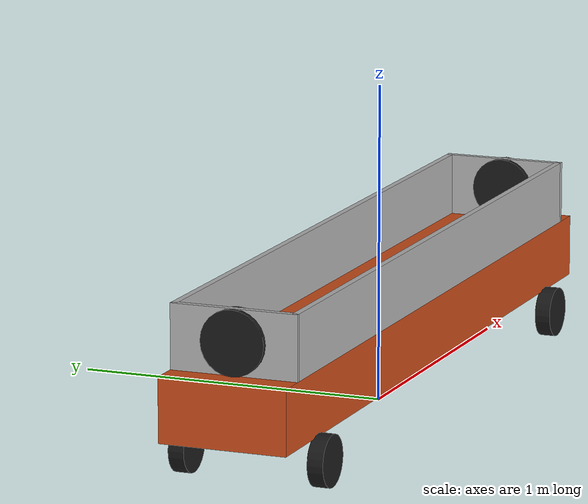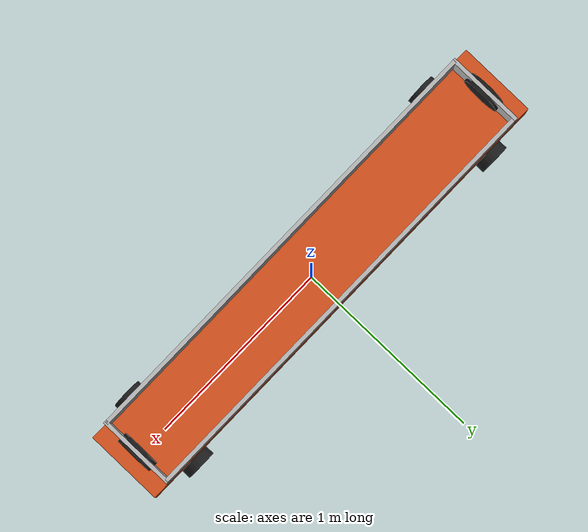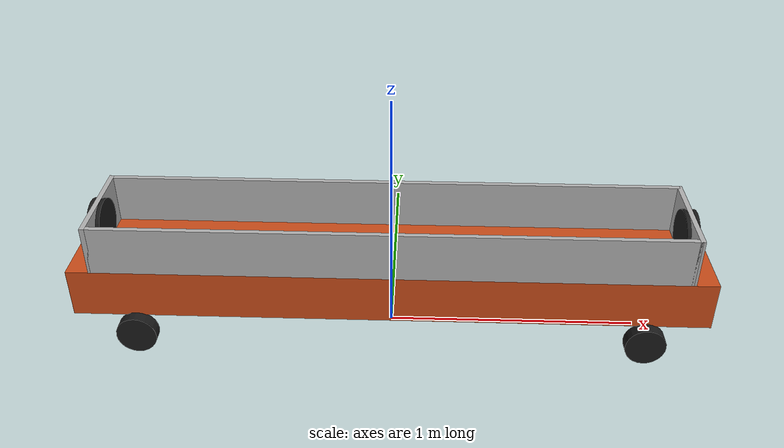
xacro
<?xml version="1.0"?>
<robot xmlns:xacro="http://www.ros.org/wiki/xacro" name="truck_bin">

    <!-- 1. القاعدة الأساسية للشاحنة -->
    <link name="truck_base_link">
        <visual>
            <origin xyz="0 0 0.25" rpy="0 0 0"/>
            <geometry>
                <box size="2.5 0.4 0.2"/>
            </geometry>
            <material name="truck_color">
                <color rgba="0.8 0.3 0.1 1.0"/>
            </material>
        </visual>
        <collision>
            <origin xyz="0 0 0.25" rpy="0 0 0"/>
            <geometry>
                <box size="2.5 0.4 0.2"/>
            </geometry>
        </collision>
        <inertial>
            <mass value="20.0"/>
            <origin xyz="0 0 0.25" rpy="0 0 0"/>
            <inertia ixx="0.5" ixy="0.0" ixz="0.0" iyy="0.5" iyz="0.0" izz="0.5"/>
        </inertial>
    </link>

    <!-- تعريف العجلات الأربع -->
    <xacro:macro name="wheel" params="prefix x_pos y_pos">
        <link name="${prefix}_wheel_link">
            <visual>
                <origin xyz="0 0 0" rpy="1.5707 0 0"/>
                <geometry>
                    <cylinder radius="0.08" length="0.05"/>
                </geometry>
                <material name="black">
                    <color rgba="0.1 0.1 0.1 1.0"/>
                </material>
            </visual>
            <collision>
                <origin xyz="0 0 0" rpy="1.5707 0 0"/>
                <geometry>
                    <cylinder radius="0.08" length="0.05"/>
                </geometry>
            </collision>
            <inertial>
                <mass value="1.0"/>
                <origin xyz="0 0 0" rpy="1.5707 0 0"/>
                <inertia ixx="0.01" ixy="0.0" ixz="0.0" iyy="0.01" iyz="0.0" izz="0.01"/>
            </inertial>
        </link>

        <joint name="${prefix}_wheel_joint" type="fixed">
            <parent link="truck_base_link"/>
            <child link="${prefix}_wheel_link"/>
            <origin xyz="${x_pos} ${y_pos} 0.08" rpy="0 0 0"/>
        </joint>

        <gazebo reference="${prefix}_wheel_link">
            <material>Gazebo/Black</material>
        </gazebo>
    </xacro:macro>

    <!-- استدعاء العجلات الأربع -->
    <xacro:wheel prefix="front_right" x_pos="1.0"  y_pos="-0.22"/>
    <xacro:wheel prefix="front_left"  x_pos="1.0"  y_pos="0.22"/>
    <xacro:wheel prefix="back_right"  x_pos="-1.0" y_pos="-0.22"/>
    <xacro:wheel prefix="back_left"   x_pos="-1.0" y_pos="0.22"/>

    <!-- 2. حواف صندوق الشاحنة (بارتفاع 20 سم / 0.2 متر) -->
    <!-- الجدار الجانبي الأيمن -->
    <link name="right_wall_link">
        <visual><origin xyz="0 0 0.1" rpy="0 0 0"/><geometry><box size="2.3 0.02 0.2"/></geometry><material name="wall_color"><color rgba="0.7 0.7 0.7 1.0"/></material></visual>
        <collision><origin xyz="0 0 0.1" rpy="0 0 0"/><geometry><box size="2.3 0.02 0.2"/></geometry></collision>
        <inertial><mass value="2.0"/><inertia ixx="0.1" ixy="0" ixz="0" iyy="0.1" iyz="0" izz="0.1"/></inertial>
    </link>
    <joint name="right_wall_joint" type="fixed">
        <parent link="truck_base_link"/><child link="right_wall_link"/><origin xyz="0.0 -0.19 0.35" rpy="0 0 0"/>
    </joint>

    <!-- الجدار الجانبي الأيسر -->
    <link name="left_wall_link">
        <visual><origin xyz="0 0 0.1" rpy="0 0 0"/><geometry><box size="2.3 0.02 0.2"/></geometry><material name="wall_color"><color rgba="0.7 0.7 0.7 1.0"/></material></visual>
        <collision><origin xyz="0 0 0.1" rpy="0 0 0"/><geometry><box size="2.3 0.02 0.2"/></geometry></collision>
        <inertial><mass value="2.0"/><inertia ixx="0.1" ixy="0" ixz="0" iyy="0.1" iyz="0" izz="0.1"/></inertial>
    </link>
    <joint name="left_wall_joint" type="fixed">
        <parent link="truck_base_link"/><child link="left_wall_link"/><origin xyz="0.0 0.19 0.35" rpy="0 0 0"/>
    </joint>

    <!-- الجدار الخلفي -->
    <link name="back_wall_link">
        <visual><origin xyz="0 0 0.1" rpy="0 0 0"/><geometry><box size="0.02 0.4 0.2"/></geometry><material name="wall_color"><color rgba="0.7 0.7 0.7 1.0"/></material></visual>
        <collision><origin xyz="0 0 0.1" rpy="0 0 0"/><geometry><box size="0.02 0.4 0.2"/></geometry></collision>
        <inertial><mass value="1.0"/><inertia ixx="0.05" ixy="0" ixz="0" iyy="0.05" iyz="0" izz="0.05"/></inertial>
    </link>
    <joint name="back_wall_joint" type="fixed">
        <parent link="truck_base_link"/><child link="back_wall_link"/><origin xyz="-1.15 0 0.35" rpy="0 0 0"/>
    </joint>

    <!-- الجدار الأمامي -->
    <link name="front_wall_link">
        <visual><origin xyz="0 0 0.1" rpy="0 0 0"/><geometry><box size="0.02 0.4 0.2"/></geometry><material name="wall_color"><color rgba="0.7 0.7 0.7 1.0"/></material></visual>
        <collision><origin xyz="0 0 0.1" rpy="0 0 0"/><geometry><box size="0.02 0.4 0.2"/></geometry></collision>
        <inertial><mass value="1.0"/><inertia ixx="0.05" ixy="0" ixz="0" iyy="0.05" iyz="0" izz="0.05"/></inertial>
    </link>
    <joint name="front_wall_joint" type="fixed">
        <parent link="truck_base_link"/><child link="front_wall_link"/><origin xyz="1.15 0 0.35" rpy="0 0 0"/>
    </joint>

    <!-- 3. التعليقة القوسية (نصف دائرة / U مقلوبة) في المقدمة -->
    <link name="front_arch_hook_link">
        <visual>
            <origin xyz="0 0 0.1" rpy="0 1.5707 0"/>
            <geometry>
                <cylinder radius="0.1" length="0.05"/>
            </geometry>
            <material name="hook_color">
                <color rgba="0.1 0.1 0.1 1.0"/>
            </material>
        </visual>
        <collision>
            <origin xyz="0 0 0.1" rpy="0 1.5707 0"/>
            <geometry>
                <cylinder radius="0.1" length="0.05"/>
            </geometry>
        </collision>
        <inertial>
            <mass value="0.2"/>
            <inertia ixx="0.01" ixy="0" ixz="0" iyy="0.01" iyz="0" izz="0.01"/>
        </inertial>
    </link>
    <joint name="front_arch_hook_joint" type="fixed">
        <parent link="truck_base_link"/>
        <child link="front_arch_hook_link"/>
        <!-- في منتصف العرض بالمقدمة فوق القاعدة البرتقالية -->
        <origin xyz="1.15 0 0.35" rpy="0 0 0"/>
    </joint>

    <!-- 4. التعليقة القوسية (نصف دائرة / U مقلوبة) في المؤخرة -->
    <link name="back_arch_hook_link">
        <visual>
            <origin xyz="0 0 0.1" rpy="0 1.5707 0"/>
            <geometry>
                <cylinder radius="0.1" length="0.05"/>
            </geometry>
            <material name="hook_color">
                <color rgba="0.1 0.1 0.1 1.0"/>
            </material>
        </visual>
        <collision>
            <origin xyz="0 0 0.1" rpy="0 1.5707 0"/>
            <geometry>
                <cylinder radius="0.1" length="0.05"/>
            </geometry>
        </collision>
        <inertial>
            <mass value="0.2"/>
            <inertia ixx="0.01" ixy="0" ixz="0" iyy="0.01" iyz="0" izz="0.01"/>
        </inertial>
    </link>
    <joint name="back_arch_hook_joint" type="fixed">
        <parent link="truck_base_link"/>
        <child link="back_arch_hook_link"/>
        <!-- في منتصف العرض بالمؤخرة فوق القاعدة البرتقالية -->
        <origin xyz="-1.15 0 0.35" rpy="0 0 0"/>
    </joint>

    <!-- تعريف المظهر في جازيبو -->
    <gazebo reference="truck_base_link"><material>Gazebo/Orange</material></gazebo>
    <gazebo reference="right_wall_link"><material>Gazebo/Grey</material></gazebo>
    <gazebo reference="left_wall_link"><material>Gazebo/Grey</material></gazebo>
    <gazebo reference="back_wall_link"><material>Gazebo/Grey</material></gazebo>
    <gazebo reference="front_wall_link"><material>Gazebo/Grey</material></gazebo>
    <gazebo reference="front_arch_hook_link"><material>Gazebo/Black</material></gazebo>
    <gazebo reference="back_arch_hook_link"><material>Gazebo/Black</material></gazebo>

</robot>
